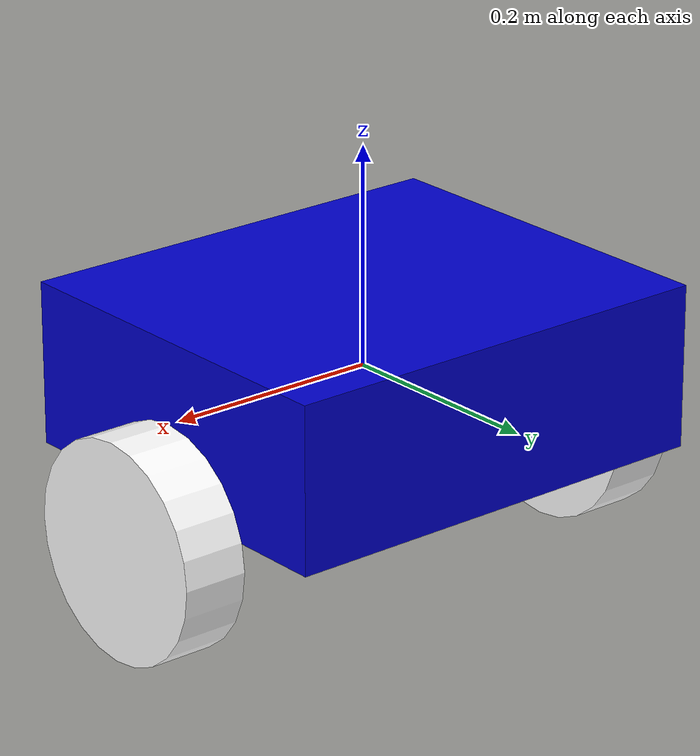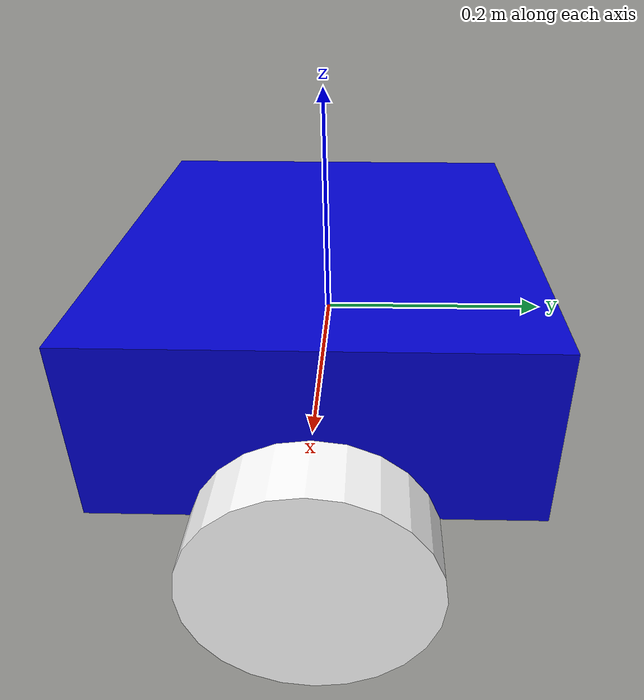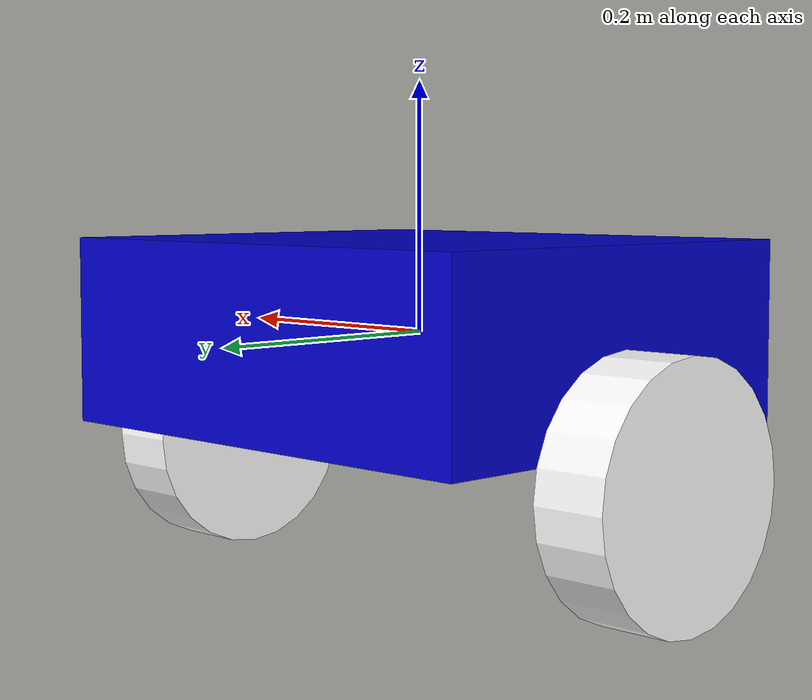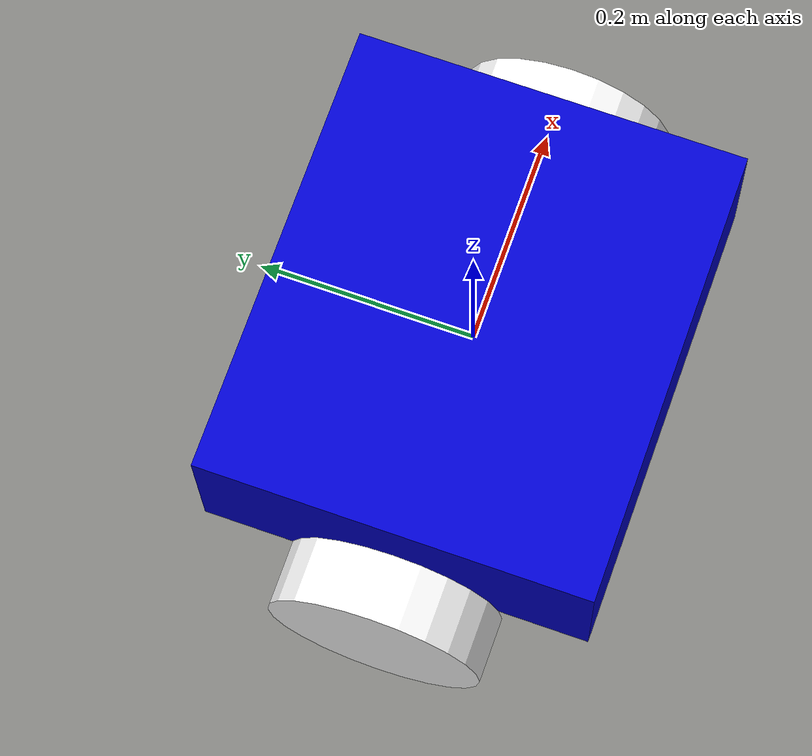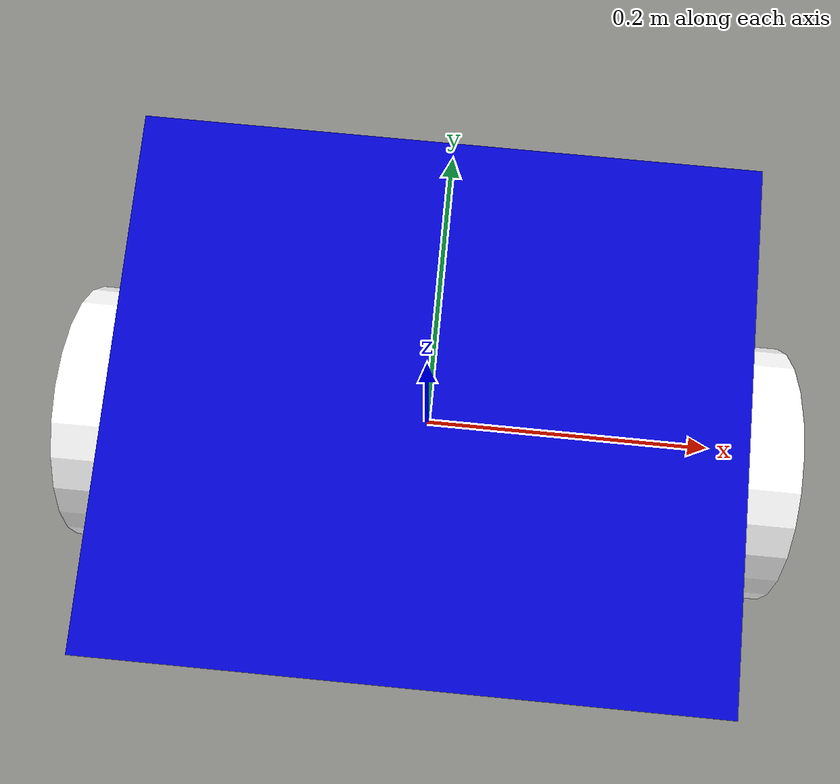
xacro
<?xml version="1.0"?>
<robot xmlns:xacro="http://www.ros.org/wiki/xacro" name="balance">

<xacro:property name="wheel_mass" value="0.98" />
<xacro:property name="wheel_radius" value="0.1" />
<xacro:property name="wheel_length" value="0.06" />

<xacro:property name="chassis_mass" value="5.55" />
<xacro:property name="chassis_L" value="0.42" />
<xacro:property name="chassis_W" value="0.36" />
<xacro:property name="chassis_H" value="0.15" />

  <material name="blue">
    <color rgba="0 0 0.8 1"/>
  </material>

  <material name="white">
    <color rgba="1 1 1 1"/>
  </material>

  <link name="world" />
  <joint name="world_joint" type="planar">
    <parent link="world" />
    <child link="base_link" />
  </joint>

  <link name="base_link">
    <visual>
      <geometry>
        <box size="${chassis_L} ${chassis_W} ${chassis_H}"/>
      </geometry>
      <material name="blue"/>
      <origin rpy="0 0 0" xyz="0 0 0"/>
    </visual>
    <collision>
      <geometry>
        <box size="${chassis_L} ${chassis_W} ${chassis_H}"/>
      </geometry>
    </collision>
    <inertial>
      <mass value="${chassis_mass}"/>
      <inertia ixx="${chassis_mass/12*(chassis_L*chassis_L+chassis_H*chassis_H)}" ixy="0.0" ixz="0.0"
               iyy="${chassis_mass/12*(chassis_L*chassis_L+chassis_H*chassis_H)}" iyz="0.0"
               izz="${chassis_mass/12*(chassis_L*chassis_L+chassis_H*chassis_H)}"/>
    </inertial>
  </link>

<xacro:macro name="wheel" params="direction reflect">
  <link name="${direction}_wheel">
    <visual>
      <geometry>
        <cylinder length="${wheel_length}" radius="${wheel_radius}"/>
      </geometry>
      <material name="white"/>
      <origin rpy="0 0 0" xyz="0 0 0"/>
    </visual>
    <collision>
      <geometry>
        <cylinder length="${wheel_length}" radius="${wheel_radius}"/>
      </geometry>
    </collision>
    <inertial>
      <mass value="${wheel_mass}"/>
      <inertia ixx="${wheel_mass/12*(3*wheel_radius*wheel_radius+wheel_length*wheel_length)}" ixy="0.0" ixz="0.0"
               iyy="${wheel_mass/12*(3*wheel_radius*wheel_radius+wheel_length*wheel_length)}" iyz="0.0"
               izz="${wheel_mass/2*wheel_radius*wheel_radius}"/>
    </inertial>
  </link>

  <joint name="${direction}_joint" type="continuous">
    <origin rpy="0 -1.57075 0" xyz="${reflect*(chassis_L+wheel_length)/2} 0 -${wheel_radius}"/>
    <axis xyz="0 0 1"/>
    <parent link="base_link"/>
    <child link="${direction}_wheel"/>
  </joint>

</xacro:macro>

<xacro:wheel direction="right" reflect="1" />
<xacro:wheel direction="left" reflect="-1" />

</robot>
